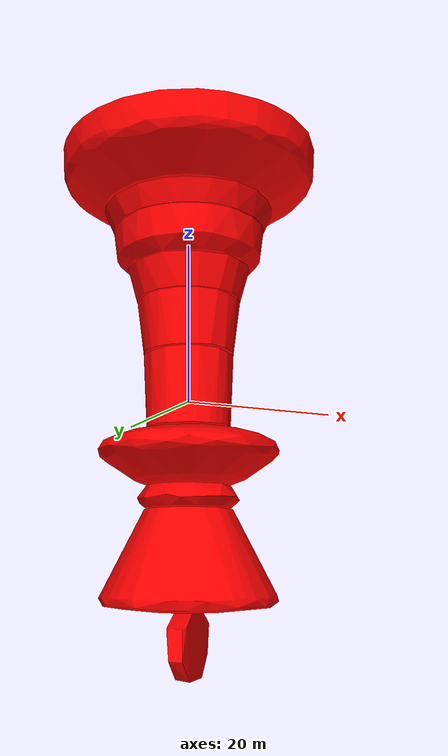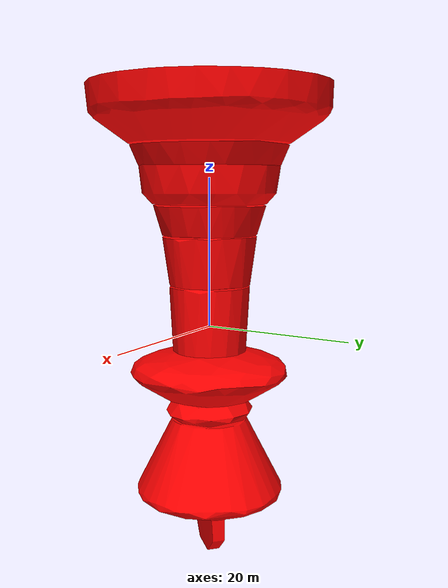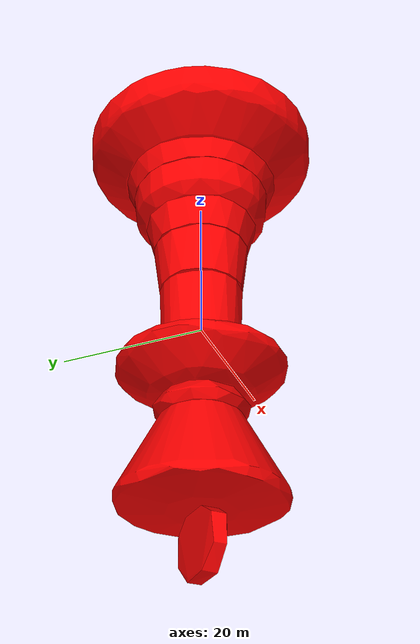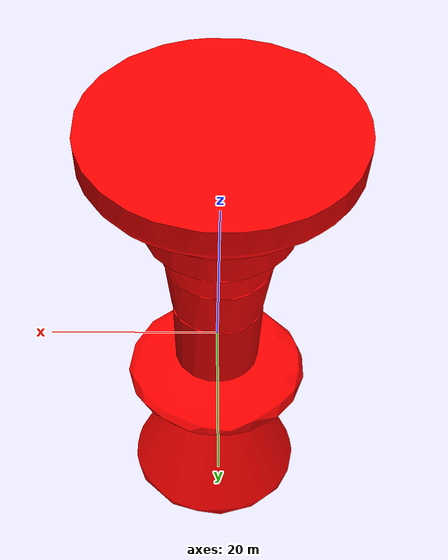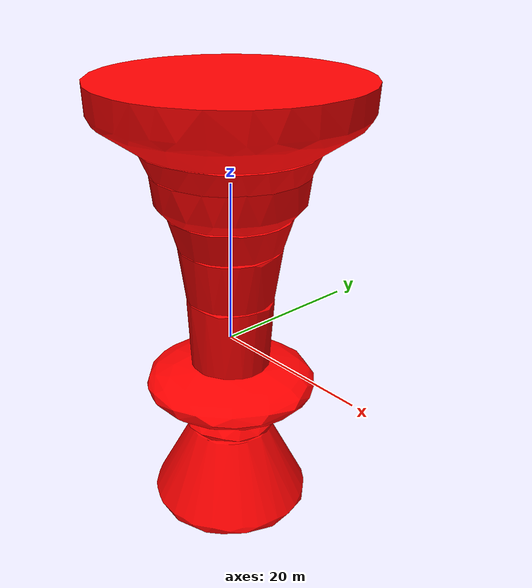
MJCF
<?xml version="1.0" encoding="utf-8"?>
<mujoco>
	<asset>
		<mesh file="holdouts/chess/collision/0_scad_chess_king_20200504.stl" name="chess0"></mesh>
		<mesh file="holdouts/chess/collision/1_scad_chess_king_20200504.stl" name="chess1"></mesh>
		<mesh file="holdouts/chess/collision/2_scad_chess_king_20200504.stl" name="chess2"></mesh>
		<mesh file="holdouts/chess/collision/3_scad_chess_king_20200504.stl" name="chess3"></mesh>
		<mesh file="holdouts/chess/collision/4_scad_chess_king_20200504.stl" name="chess4"></mesh>
		<mesh file="holdouts/chess/collision/5_scad_chess_king_20200504.stl" name="chess5"></mesh>
		<mesh file="holdouts/chess/collision/6_scad_chess_king_20200504.stl" name="chess6"></mesh>
		<mesh file="holdouts/chess/collision/7_scad_chess_king_20200504.stl" name="chess7"></mesh>
		<mesh file="holdouts/chess/collision/8_scad_chess_king_20200504.stl" name="chess8"></mesh>
		<mesh file="holdouts/chess/collision/9_scad_chess_king_20200504.stl" name="chess9"></mesh>
		<material name="block_mat" rgba="1.0 0 0 1.0" specular="0.25" shininess="0.10" reflectance="0.10"></material>
	</asset>
	<worldbody>
		<body>
			<geom type="mesh" mesh="chess0" material="block_mat"></geom>
			<geom type="mesh" mesh="chess1" material="block_mat"></geom>
			<geom type="mesh" mesh="chess2" material="block_mat"></geom>
			<geom type="mesh" mesh="chess3" material="block_mat"></geom>
			<geom type="mesh" mesh="chess4" material="block_mat"></geom>
			<geom type="mesh" mesh="chess5" material="block_mat"></geom>
			<geom type="mesh" mesh="chess6" material="block_mat"></geom>
			<geom type="mesh" mesh="chess7" material="block_mat"></geom>
			<geom type="mesh" mesh="chess8" material="block_mat"></geom>
			<geom type="mesh" mesh="chess9" material="block_mat"></geom>
			<joint type="free"></joint>
		</body>
	</worldbody>
</mujoco>
